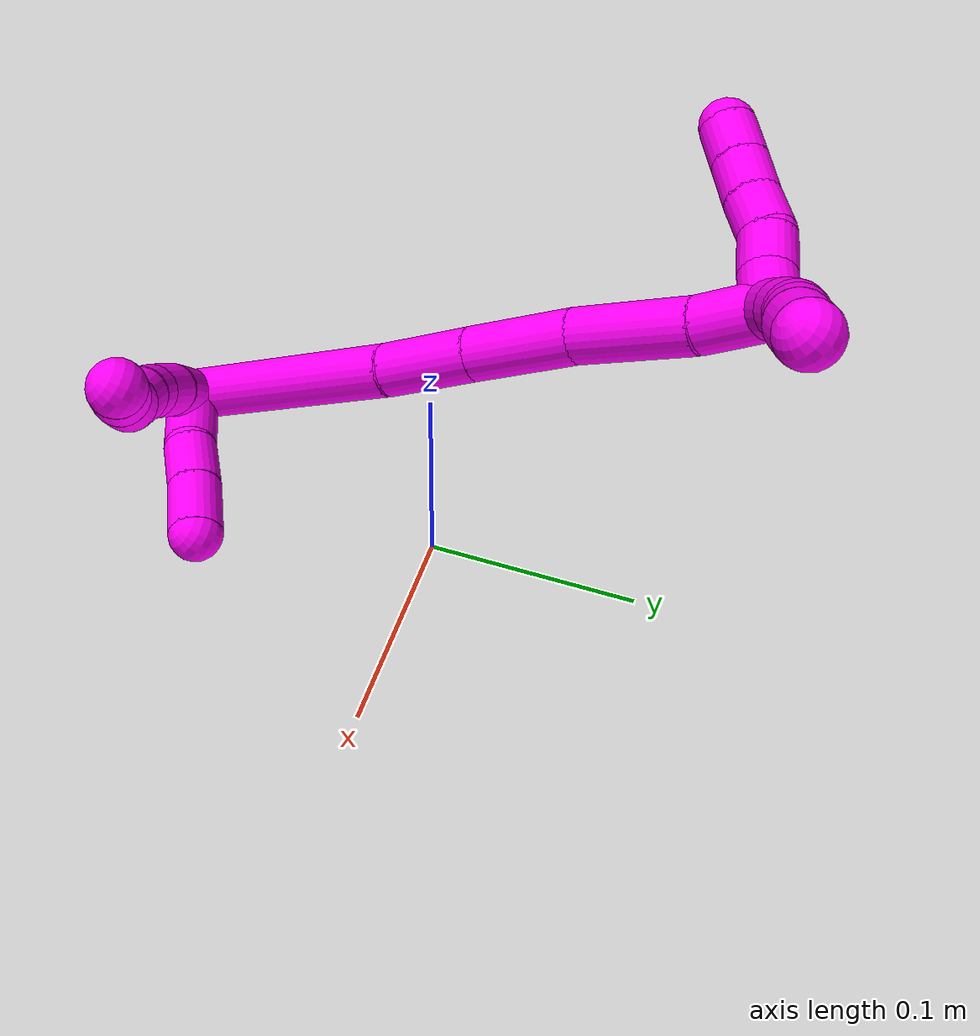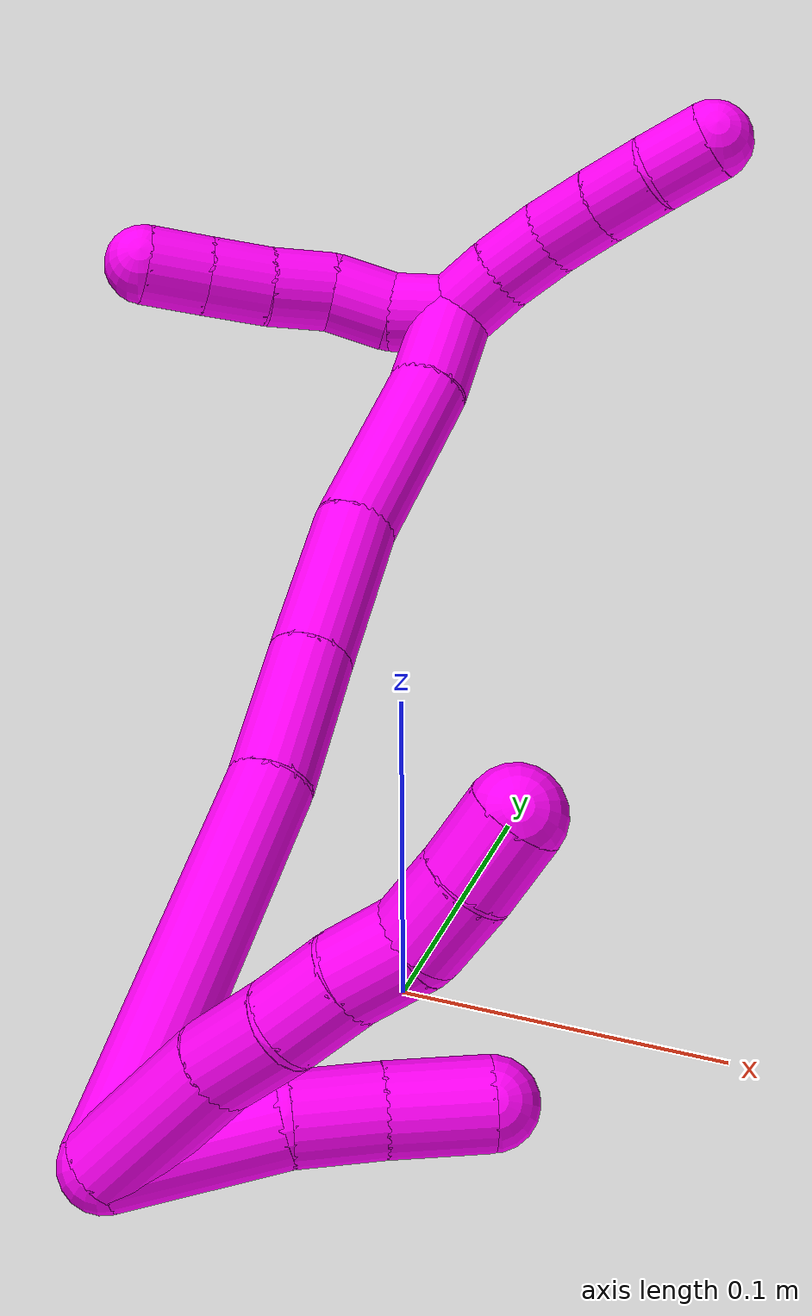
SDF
<sdf version="1.7">
 <world name="default">
  <model name="10">
   <static>0</static>
   <link name="10">
    <collision name="collision-cylinder-e_1_2_8">
     <pose>0.009029 0.016392 0.01272 -0.910855 0.410442 -0.203189</pose>
     <geometry><cylinder><radius>0.0125</radius><length>0.045255</length></cylinder></geometry>
     <surface>
      <friction><ode><mu>1.16</mu><mu2>1.16</mu2><slip1>0</slip1><slip2>0</slip2></ode></friction>
      <contact><ode><kp>1e+06</kp><kd>1</kd><max_vel>0</max_vel><min_depth>0.001</min_depth></ode></contact>
     </surface>
    </collision>
    <visual name="visual-cylinder-e_1_2_8">
     <pose>0.009029 0.016392 0.01272 -0.910855 0.410442 -0.203189</pose>
     <geometry><cylinder><radius>0.0125</radius><length>0.045255</length></cylinder></geometry>
     <material><ambient>1 0 0.964706 1</ambient></material>
    </visual>
    <collision name="collision-cylinder-e_2_8_9">
     <pose>0.024087 0.040115 0.032745 -0.787255 0.527505 -0.223366</pose>
     <geometry><cylinder><radius>0.0125</radius><length>0.023955</length></cylinder></geometry>
     <surface>
      <friction><ode><mu>1.16</mu><mu2>1.16</mu2><slip1>0</slip1><slip2>0</slip2></ode></friction>
      <contact><ode><kp>1e+06</kp><kd>1</kd><max_vel>0</max_vel><min_depth>0.001</min_depth></ode></contact>
     </surface>
    </collision>
    <visual name="visual-cylinder-e_2_8_9">
     <pose>0.024087 0.040115 0.032745 -0.787255 0.527505 -0.223366</pose>
     <geometry><cylinder><radius>0.0125</radius><length>0.023955</length></cylinder></geometry>
     <material><ambient>1 0 0.964706 1</ambient></material>
    </visual>
    <collision name="collision-cylinder-e_3_9_10">
     <pose>0.035157 0.054942 0.045041 -0.983272 0.510263 -0.277533</pose>
     <geometry><cylinder><radius>0.0125</radius><length>0.02064</length></cylinder></geometry>
     <surface>
      <friction><ode><mu>1.16</mu><mu2>1.16</mu2><slip1>0</slip1><slip2>0</slip2></ode></friction>
      <contact><ode><kp>1e+06</kp><kd>1</kd><max_vel>0</max_vel><min_depth>0.001</min_depth></ode></contact>
     </surface>
    </collision>
    <visual name="visual-cylinder-e_3_9_10">
     <pose>0.035157 0.054942 0.045041 -0.983272 0.510263 -0.277533</pose>
     <geometry><cylinder><radius>0.0125</radius><length>0.02064</length></cylinder></geometry>
     <material><ambient>1 0 0.964706 1</ambient></material>
    </visual>
    <collision name="collision-cylinder-e_4_10_11">
     <pose>0.046162 0.069209 0.054425 -0.995437 0.636454 -0.354229</pose>
     <geometry><cylinder><radius>0.0125</radius><length>0.020071</length></cylinder></geometry>
     <surface>
      <friction><ode><mu>1.16</mu><mu2>1.16</mu2><slip1>0</slip1><slip2>0</slip2></ode></friction>
      <contact><ode><kp>1e+06</kp><kd>1</kd><max_vel>0</max_vel><min_depth>0.001</min_depth></ode></contact>
     </surface>
    </collision>
    <visual name="visual-cylinder-e_4_10_11">
     <pose>0.046162 0.069209 0.054425 -0.995437 0.636454 -0.354229</pose>
     <geometry><cylinder><radius>0.0125</radius><length>0.020071</length></cylinder></geometry>
     <material><ambient>1 0 0.964706 1</ambient></material>
    </visual>
    <collision name="collision-cylinder-e_5_11_12">
     <pose>0.055055 0.084056 0.063943 -1.0052 0.297069 -0.164136</pose>
     <geometry><cylinder><radius>0.0125</radius><length>0.020007</length></cylinder></geometry>
     <surface>
      <friction><ode><mu>1.16</mu><mu2>1.16</mu2><slip1>0</slip1><slip2>0</slip2></ode></friction>
      <contact><ode><kp>1e+06</kp><kd>1</kd><max_vel>0</max_vel><min_depth>0.001</min_depth></ode></contact>
     </surface>
    </collision>
    <visual name="visual-cylinder-e_5_11_12">
     <pose>0.055055 0.084056 0.063943 -1.0052 0.297069 -0.164136</pose>
     <geometry><cylinder><radius>0.0125</radius><length>0.020007</length></cylinder></geometry>
     <material><ambient>1 0 0.964706 1</ambient></material>
    </visual>
    <collision name="collision-cylinder-e_6_12_6">
     <pose>0.060356 0.100721 0.073684 -1.0777 0.238767 -0.143188</pose>
     <geometry><cylinder><radius>0.0125</radius><length>0.02007</length></cylinder></geometry>
     <surface>
      <friction><ode><mu>1.16</mu><mu2>1.16</mu2><slip1>0</slip1><slip2>0</slip2></ode></friction>
      <contact><ode><kp>1e+06</kp><kd>1</kd><max_vel>0</max_vel><min_depth>0.001</min_depth></ode></contact>
     </surface>
    </collision>
    <visual name="visual-cylinder-e_6_12_6">
     <pose>0.060356 0.100721 0.073684 -1.0777 0.238767 -0.143188</pose>
     <geometry><cylinder><radius>0.0125</radius><length>0.02007</length></cylinder></geometry>
     <material><ambient>1 0 0.964706 1</ambient></material>
    </visual>
    <collision name="collision-cylinder-e_1_2_13">
     <pose>0.018958 0.01425 0.002159 -1.42042 0.920773 -0.806195</pose>
     <geometry><cylinder><radius>0.0125</radius><length>0.04763</length></cylinder></geometry>
     <surface>
      <friction><ode><mu>1.16</mu><mu2>1.16</mu2><slip1>0</slip1><slip2>0</slip2></ode></friction>
      <contact><ode><kp>1e+06</kp><kd>1</kd><max_vel>0</max_vel><min_depth>0.001</min_depth></ode></contact>
     </surface>
    </collision>
    <visual name="visual-cylinder-e_1_2_13">
     <pose>0.018958 0.01425 0.002159 -1.42042 0.920773 -0.806195</pose>
     <geometry><cylinder><radius>0.0125</radius><length>0.04763</length></cylinder></geometry>
     <material><ambient>1 0 0.964706 1</ambient></material>
    </visual>
    <collision name="collision-cylinder-e_2_13_14">
     <pose>0.048442 0.034487 0.002672 -1.83921 1.03785 -1.28629</pose>
     <geometry><cylinder><radius>0.0125</radius><length>0.024439</length></cylinder></geometry>
     <surface>
      <friction><ode><mu>1.16</mu><mu2>1.16</mu2><slip1>0</slip1><slip2>0</slip2></ode></friction>
      <contact><ode><kp>1e+06</kp><kd>1</kd><max_vel>0</max_vel><min_depth>0.001</min_depth></ode></contact>
     </surface>
    </collision>
    <visual name="visual-cylinder-e_2_13_14">
     <pose>0.048442 0.034487 0.002672 -1.83921 1.03785 -1.28629</pose>
     <geometry><cylinder><radius>0.0125</radius><length>0.024439</length></cylinder></geometry>
     <material><ambient>1 0 0.964706 1</ambient></material>
    </visual>
    <collision name="collision-cylinder-e_3_14_5">
     <pose>0.071325 0.046878 -0.000106 -1.74562 1.08634 -1.24769</pose>
     <geometry><cylinder><radius>0.0125</radius><length>0.027931</length></cylinder></geometry>
     <surface>
      <friction><ode><mu>1.16</mu><mu2>1.16</mu2><slip1>0</slip1><slip2>0</slip2></ode></friction>
      <contact><ode><kp>1e+06</kp><kd>1</kd><max_vel>0</max_vel><min_depth>0.001</min_depth></ode></contact>
     </surface>
    </collision>
    <visual name="visual-cylinder-e_3_14_5">
     <pose>0.071325 0.046878 -0.000106 -1.74562 1.08634 -1.24769</pose>
     <geometry><cylinder><radius>0.0125</radius><length>0.027931</length></cylinder></geometry>
     <material><ambient>1 0 0.964706 1</ambient></material>
    </visual>
    <collision name="collision-cylinder-e_1_2_15">
     <pose>-0.00358 0.05606 -0.018977 -1.8972 -0.060424 0.084222</pose>
     <geometry><cylinder><radius>0.0125</radius><length>0.118585</length></cylinder></geometry>
     <surface>
      <friction><ode><mu>1.16</mu><mu2>1.16</mu2><slip1>0</slip1><slip2>0</slip2></ode></friction>
      <contact><ode><kp>1e+06</kp><kd>1</kd><max_vel>0</max_vel><min_depth>0.001</min_depth></ode></contact>
     </surface>
    </collision>
    <visual name="visual-cylinder-e_1_2_15">
     <pose>-0.00358 0.05606 -0.018977 -1.8972 -0.060424 0.084222</pose>
     <geometry><cylinder><radius>0.0125</radius><length>0.118585</length></cylinder></geometry>
     <material><ambient>1 0 0.964706 1</ambient></material>
    </visual>
    <collision name="collision-cylinder-e_2_15_16">
     <pose>-0.010471 0.132451 -0.045682 -1.93401 -0.151008 0.218485</pose>
     <geometry><cylinder><radius>0.0125</radius><length>0.044002</length></cylinder></geometry>
     <surface>
      <friction><ode><mu>1.16</mu><mu2>1.16</mu2><slip1>0</slip1><slip2>0</slip2></ode></friction>
      <contact><ode><kp>1e+06</kp><kd>1</kd><max_vel>0</max_vel><min_depth>0.001</min_depth></ode></contact>
     </surface>
    </collision>
    <visual name="visual-cylinder-e_2_15_16">
     <pose>-0.010471 0.132451 -0.045682 -1.93401 -0.151008 0.218485</pose>
     <geometry><cylinder><radius>0.0125</radius><length>0.044002</length></cylinder></geometry>
     <material><ambient>1 0 0.964706 1</ambient></material>
    </visual>
    <collision name="collision-cylinder-e_3_16_17">
     <pose>-0.017169 0.175845 -0.062172 -1.93391 -0.136491 0.197535</pose>
     <geometry><cylinder><radius>0.0125</radius><length>0.049805</length></cylinder></geometry>
     <surface>
      <friction><ode><mu>1.16</mu><mu2>1.16</mu2><slip1>0</slip1><slip2>0</slip2></ode></friction>
      <contact><ode><kp>1e+06</kp><kd>1</kd><max_vel>0</max_vel><min_depth>0.001</min_depth></ode></contact>
     </surface>
    </collision>
    <visual name="visual-cylinder-e_3_16_17">
     <pose>-0.017169 0.175845 -0.062172 -1.93391 -0.136491 0.197535</pose>
     <geometry><cylinder><radius>0.0125</radius><length>0.049805</length></cylinder></geometry>
     <material><ambient>1 0 0.964706 1</ambient></material>
    </visual>
    <collision name="collision-cylinder-e_4_17_18">
     <pose>-0.020379 0.225998 -0.079188 -1.86653 0.006287 -0.008487</pose>
     <geometry><cylinder><radius>0.0125</radius><length>0.056641</length></cylinder></geometry>
     <surface>
      <friction><ode><mu>1.16</mu><mu2>1.16</mu2><slip1>0</slip1><slip2>0</slip2></ode></friction>
      <contact><ode><kp>1e+06</kp><kd>1</kd><max_vel>0</max_vel><min_depth>0.001</min_depth></ode></contact>
     </surface>
    </collision>
    <visual name="visual-cylinder-e_4_17_18">
     <pose>-0.020379 0.225998 -0.079188 -1.86653 0.006287 -0.008487</pose>
     <geometry><cylinder><radius>0.0125</radius><length>0.056641</length></cylinder></geometry>
     <material><ambient>1 0 0.964706 1</ambient></material>
    </visual>
    <collision name="collision-cylinder-e_5_18_1">
     <pose>-0.02205 0.267912 -0.091511 -1.8387 -0.119664 0.156804</pose>
     <geometry><cylinder><radius>0.0125</radius><length>0.030966</length></cylinder></geometry>
     <surface>
      <friction><ode><mu>1.16</mu><mu2>1.16</mu2><slip1>0</slip1><slip2>0</slip2></ode></friction>
      <contact><ode><kp>1e+06</kp><kd>1</kd><max_vel>0</max_vel><min_depth>0.001</min_depth></ode></contact>
     </surface>
    </collision>
    <visual name="visual-cylinder-e_5_18_1">
     <pose>-0.02205 0.267912 -0.091511 -1.8387 -0.119664 0.156804</pose>
     <geometry><cylinder><radius>0.0125</radius><length>0.030966</length></cylinder></geometry>
     <material><ambient>1 0 0.964706 1</ambient></material>
    </visual>
    <collision name="collision-cylinder-e_1_1_19">
     <pose>-0.019245 0.290429 -0.091201 -1.05329 0.483925 -0.28504</pose>
     <geometry><cylinder><radius>0.0125</radius><length>0.02</length></cylinder></geometry>
     <surface>
      <friction><ode><mu>1.16</mu><mu2>1.16</mu2><slip1>0</slip1><slip2>0</slip2></ode></friction>
      <contact><ode><kp>1e+06</kp><kd>1</kd><max_vel>0</max_vel><min_depth>0.001</min_depth></ode></contact>
     </surface>
    </collision>
    <visual name="visual-cylinder-e_1_1_19">
     <pose>-0.019245 0.290429 -0.091201 -1.05329 0.483925 -0.28504</pose>
     <geometry><cylinder><radius>0.0125</radius><length>0.02</length></cylinder></geometry>
     <material><ambient>1 0 0.964706 1</ambient></material>
    </visual>
    <collision name="collision-cylinder-e_2_19_20">
     <pose>-0.009208 0.305 -0.081954 -0.954913 0.568615 -0.30011</pose>
     <geometry><cylinder><radius>0.0125</radius><length>0.02</length></cylinder></geometry>
     <surface>
      <friction><ode><mu>1.16</mu><mu2>1.16</mu2><slip1>0</slip1><slip2>0</slip2></ode></friction>
      <contact><ode><kp>1e+06</kp><kd>1</kd><max_vel>0</max_vel><min_depth>0.001</min_depth></ode></contact>
     </surface>
    </collision>
    <visual name="visual-cylinder-e_2_19_20">
     <pose>-0.009208 0.305 -0.081954 -0.954913 0.568615 -0.30011</pose>
     <geometry><cylinder><radius>0.0125</radius><length>0.02</length></cylinder></geometry>
     <material><ambient>1 0 0.964706 1</ambient></material>
    </visual>
    <collision name="collision-cylinder-e_3_20_21">
     <pose>0.002039 0.317596 -0.071348 -0.783533 0.626468 -0.266038</pose>
     <geometry><cylinder><radius>0.0125</radius><length>0.02</length></cylinder></geometry>
     <surface>
      <friction><ode><mu>1.16</mu><mu2>1.16</mu2><slip1>0</slip1><slip2>0</slip2></ode></friction>
      <contact><ode><kp>1e+06</kp><kd>1</kd><max_vel>0</max_vel><min_depth>0.001</min_depth></ode></contact>
     </surface>
    </collision>
    <visual name="visual-cylinder-e_3_20_21">
     <pose>0.002039 0.317596 -0.071348 -0.783533 0.626468 -0.266038</pose>
     <geometry><cylinder><radius>0.0125</radius><length>0.02</length></cylinder></geometry>
     <material><ambient>1 0 0.964706 1</ambient></material>
    </visual>
    <collision name="collision-cylinder-e_4_21_22">
     <pose>0.013953 0.328834 -0.059872 -0.766243 0.649853 -0.269888</pose>
     <geometry><cylinder><radius>0.0125</radius><length>0.02</length></cylinder></geometry>
     <surface>
      <friction><ode><mu>1.16</mu><mu2>1.16</mu2><slip1>0</slip1><slip2>0</slip2></ode></friction>
      <contact><ode><kp>1e+06</kp><kd>1</kd><max_vel>0</max_vel><min_depth>0.001</min_depth></ode></contact>
     </surface>
    </collision>
    <visual name="visual-cylinder-e_4_21_22">
     <pose>0.013953 0.328834 -0.059872 -0.766243 0.649853 -0.269888</pose>
     <geometry><cylinder><radius>0.0125</radius><length>0.02</length></cylinder></geometry>
     <material><ambient>1 0 0.964706 1</ambient></material>
    </visual>
    <collision name="collision-cylinder-e_5_22_4">
     <pose>0.02634 0.340694 -0.0497 -0.96028 0.686219 -0.367886</pose>
     <geometry><cylinder><radius>0.0125</radius><length>0.02</length></cylinder></geometry>
     <surface>
      <friction><ode><mu>1.16</mu><mu2>1.16</mu2><slip1>0</slip1><slip2>0</slip2></ode></friction>
      <contact><ode><kp>1e+06</kp><kd>1</kd><max_vel>0</max_vel><min_depth>0.001</min_depth></ode></contact>
     </surface>
    </collision>
    <visual name="visual-cylinder-e_5_22_4">
     <pose>0.02634 0.340694 -0.0497 -0.96028 0.686219 -0.367886</pose>
     <geometry><cylinder><radius>0.0125</radius><length>0.02</length></cylinder></geometry>
     <material><ambient>1 0 0.964706 1</ambient></material>
    </visual>
    <collision name="collision-cylinder-e_1_1_23">
     <pose>-0.033317 0.27951 -0.096516 1.85301 -1.22822 -1.50739</pose>
     <geometry><cylinder><radius>0.0125</radius><length>0.02</length></cylinder></geometry>
     <surface>
      <friction><ode><mu>1.16</mu><mu2>1.16</mu2><slip1>0</slip1><slip2>0</slip2></ode></friction>
      <contact><ode><kp>1e+06</kp><kd>1</kd><max_vel>0</max_vel><min_depth>0.001</min_depth></ode></contact>
     </surface>
    </collision>
    <visual name="visual-cylinder-e_1_1_23">
     <pose>-0.033317 0.27951 -0.096516 1.85301 -1.22822 -1.50739</pose>
     <geometry><cylinder><radius>0.0125</radius><length>0.02</length></cylinder></geometry>
     <material><ambient>1 0 0.964706 1</ambient></material>
    </visual>
    <collision name="collision-cylinder-e_2_23_24">
     <pose>-0.052628 0.275198 -0.096466 0.833846 -1.42364 -0.729921</pose>
     <geometry><cylinder><radius>0.0125</radius><length>0.02</length></cylinder></geometry>
     <surface>
      <friction><ode><mu>1.16</mu><mu2>1.16</mu2><slip1>0</slip1><slip2>0</slip2></ode></friction>
      <contact><ode><kp>1e+06</kp><kd>1</kd><max_vel>0</max_vel><min_depth>0.001</min_depth></ode></contact>
     </surface>
    </collision>
    <visual name="visual-cylinder-e_2_23_24">
     <pose>-0.052628 0.275198 -0.096466 0.833846 -1.42364 -0.729921</pose>
     <geometry><cylinder><radius>0.0125</radius><length>0.02</length></cylinder></geometry>
     <material><ambient>1 0 0.964706 1</ambient></material>
    </visual>
    <collision name="collision-cylinder-e_3_24_25">
     <pose>-0.071481 0.270209 -0.093369 1.07499 -1.11095 -0.708648</pose>
     <geometry><cylinder><radius>0.0125</radius><length>0.02</length></cylinder></geometry>
     <surface>
      <friction><ode><mu>1.16</mu><mu2>1.16</mu2><slip1>0</slip1><slip2>0</slip2></ode></friction>
      <contact><ode><kp>1e+06</kp><kd>1</kd><max_vel>0</max_vel><min_depth>0.001</min_depth></ode></contact>
     </surface>
    </collision>
    <visual name="visual-cylinder-e_3_24_25">
     <pose>-0.071481 0.270209 -0.093369 1.07499 -1.11095 -0.708648</pose>
     <geometry><cylinder><radius>0.0125</radius><length>0.02</length></cylinder></geometry>
     <material><ambient>1 0 0.964706 1</ambient></material>
    </visual>
    <collision name="collision-cylinder-e_4_25_26">
     <pose>-0.08963 0.263168 -0.088862 0.918693 -1.16507 -0.630026</pose>
     <geometry><cylinder><radius>0.0125</radius><length>0.02</length></cylinder></geometry>
     <surface>
      <friction><ode><mu>1.16</mu><mu2>1.16</mu2><slip1>0</slip1><slip2>0</slip2></ode></friction>
      <contact><ode><kp>1e+06</kp><kd>1</kd><max_vel>0</max_vel><min_depth>0.001</min_depth></ode></contact>
     </surface>
    </collision>
    <visual name="visual-cylinder-e_4_25_26">
     <pose>-0.08963 0.263168 -0.088862 0.918693 -1.16507 -0.630026</pose>
     <geometry><cylinder><radius>0.0125</radius><length>0.02</length></cylinder></geometry>
     <material><ambient>1 0 0.964706 1</ambient></material>
    </visual>
    <collision name="collision-cylinder-e_5_26_3">
     <pose>-0.107945 0.256921 -0.083816 0.864901 -1.14976 -0.581176</pose>
     <geometry><cylinder><radius>0.0125</radius><length>0.02</length></cylinder></geometry>
     <surface>
      <friction><ode><mu>1.16</mu><mu2>1.16</mu2><slip1>0</slip1><slip2>0</slip2></ode></friction>
      <contact><ode><kp>1e+06</kp><kd>1</kd><max_vel>0</max_vel><min_depth>0.001</min_depth></ode></contact>
     </surface>
    </collision>
    <visual name="visual-cylinder-e_5_26_3">
     <pose>-0.107945 0.256921 -0.083816 0.864901 -1.14976 -0.581176</pose>
     <geometry><cylinder><radius>0.0125</radius><length>0.02</length></cylinder></geometry>
     <material><ambient>1 0 0.964706 1</ambient></material>
    </visual>
    <collision name="collision-sphere-3">
     <pose>-0.117072 0.25381 -0.081165 0 -0 0</pose>
     <geometry><sphere><radius>0.0125</radius></sphere></geometry>
     <surface>
      <friction><ode><mu>1.16</mu><mu2>1.16</mu2><slip1>0</slip1><slip2>0</slip2></ode></friction>
      <contact><ode><kp>1e+06</kp><kd>1</kd><max_vel>0</max_vel><min_depth>0.001</min_depth></ode></contact>
     </surface>
    </collision>
    <visual name="visual-sphere-3">
     <pose>-0.117072 0.25381 -0.081165 0 -0 0</pose>
     <geometry><sphere><radius>0.0125</radius></sphere></geometry>
     <material><ambient>1 0 0.964706 1</ambient></material>
    </visual>
    <collision name="collision-sphere-26">
     <pose>-0.098818 0.260031 -0.086467 0 -0 0</pose>
     <geometry><sphere><radius>0.0125</radius></sphere></geometry>
     <surface>
      <friction><ode><mu>1.16</mu><mu2>1.16</mu2><slip1>0</slip1><slip2>0</slip2></ode></friction>
      <contact><ode><kp>1e+06</kp><kd>1</kd><max_vel>0</max_vel><min_depth>0.001</min_depth></ode></contact>
     </surface>
    </collision>
    <visual name="visual-sphere-26">
     <pose>-0.098818 0.260031 -0.086467 0 -0 0</pose>
     <geometry><sphere><radius>0.0125</radius></sphere></geometry>
     <material><ambient>1 0 0.964706 1</ambient></material>
    </visual>
    <collision name="collision-sphere-25">
     <pose>-0.080442 0.266305 -0.091258 0 -0 0</pose>
     <geometry><sphere><radius>0.0125</radius></sphere></geometry>
     <surface>
      <friction><ode><mu>1.16</mu><mu2>1.16</mu2><slip1>0</slip1><slip2>0</slip2></ode></friction>
      <contact><ode><kp>1e+06</kp><kd>1</kd><max_vel>0</max_vel><min_depth>0.001</min_depth></ode></contact>
     </surface>
    </collision>
    <visual name="visual-sphere-25">
     <pose>-0.080442 0.266305 -0.091258 0 -0 0</pose>
     <geometry><sphere><radius>0.0125</radius></sphere></geometry>
     <material><ambient>1 0 0.964706 1</ambient></material>
    </visual>
    <collision name="collision-sphere-24">
     <pose>-0.06252 0.274112 -0.09548 0 -0 0</pose>
     <geometry><sphere><radius>0.0125</radius></sphere></geometry>
     <surface>
      <friction><ode><mu>1.16</mu><mu2>1.16</mu2><slip1>0</slip1><slip2>0</slip2></ode></friction>
      <contact><ode><kp>1e+06</kp><kd>1</kd><max_vel>0</max_vel><min_depth>0.001</min_depth></ode></contact>
     </surface>
    </collision>
    <visual name="visual-sphere-24">
     <pose>-0.06252 0.274112 -0.09548 0 -0 0</pose>
     <geometry><sphere><radius>0.0125</radius></sphere></geometry>
     <material><ambient>1 0 0.964706 1</ambient></material>
    </visual>
    <collision name="collision-sphere-23">
     <pose>-0.042736 0.276284 -0.097451 0 -0 0</pose>
     <geometry><sphere><radius>0.0125</radius></sphere></geometry>
     <surface>
      <friction><ode><mu>1.16</mu><mu2>1.16</mu2><slip1>0</slip1><slip2>0</slip2></ode></friction>
      <contact><ode><kp>1e+06</kp><kd>1</kd><max_vel>0</max_vel><min_depth>0.001</min_depth></ode></contact>
     </surface>
    </collision>
    <visual name="visual-sphere-23">
     <pose>-0.042736 0.276284 -0.097451 0 -0 0</pose>
     <geometry><sphere><radius>0.0125</radius></sphere></geometry>
     <material><ambient>1 0 0.964706 1</ambient></material>
    </visual>
    <collision name="collision-sphere-4">
     <pose>0.032676 0.347033 -0.045265 0 -0 0</pose>
     <geometry><sphere><radius>0.0125</radius></sphere></geometry>
     <surface>
      <friction><ode><mu>1.16</mu><mu2>1.16</mu2><slip1>0</slip1><slip2>0</slip2></ode></friction>
      <contact><ode><kp>1e+06</kp><kd>1</kd><max_vel>0</max_vel><min_depth>0.001</min_depth></ode></contact>
     </surface>
    </collision>
    <visual name="visual-sphere-4">
     <pose>0.032676 0.347033 -0.045265 0 -0 0</pose>
     <geometry><sphere><radius>0.0125</radius></sphere></geometry>
     <material><ambient>1 0 0.964706 1</ambient></material>
    </visual>
    <collision name="collision-sphere-22">
     <pose>0.020004 0.334355 -0.054135 0 -0 0</pose>
     <geometry><sphere><radius>0.0125</radius></sphere></geometry>
     <surface>
      <friction><ode><mu>1.16</mu><mu2>1.16</mu2><slip1>0</slip1><slip2>0</slip2></ode></friction>
      <contact><ode><kp>1e+06</kp><kd>1</kd><max_vel>0</max_vel><min_depth>0.001</min_depth></ode></contact>
     </surface>
    </collision>
    <visual name="visual-sphere-22">
     <pose>0.020004 0.334355 -0.054135 0 -0 0</pose>
     <geometry><sphere><radius>0.0125</radius></sphere></geometry>
     <material><ambient>1 0 0.964706 1</ambient></material>
    </visual>
    <collision name="collision-sphere-21">
     <pose>0.007902 0.323313 -0.065609 0 -0 0</pose>
     <geometry><sphere><radius>0.0125</radius></sphere></geometry>
     <surface>
      <friction><ode><mu>1.16</mu><mu2>1.16</mu2><slip1>0</slip1><slip2>0</slip2></ode></friction>
      <contact><ode><kp>1e+06</kp><kd>1</kd><max_vel>0</max_vel><min_depth>0.001</min_depth></ode></contact>
     </surface>
    </collision>
    <visual name="visual-sphere-21">
     <pose>0.007902 0.323313 -0.065609 0 -0 0</pose>
     <geometry><sphere><radius>0.0125</radius></sphere></geometry>
     <material><ambient>1 0 0.964706 1</ambient></material>
    </visual>
    <collision name="collision-sphere-20">
     <pose>-0.003823 0.311878 -0.077086 0 -0 0</pose>
     <geometry><sphere><radius>0.0125</radius></sphere></geometry>
     <surface>
      <friction><ode><mu>1.16</mu><mu2>1.16</mu2><slip1>0</slip1><slip2>0</slip2></ode></friction>
      <contact><ode><kp>1e+06</kp><kd>1</kd><max_vel>0</max_vel><min_depth>0.001</min_depth></ode></contact>
     </surface>
    </collision>
    <visual name="visual-sphere-20">
     <pose>-0.003823 0.311878 -0.077086 0 -0 0</pose>
     <geometry><sphere><radius>0.0125</radius></sphere></geometry>
     <material><ambient>1 0 0.964706 1</ambient></material>
    </visual>
    <collision name="collision-sphere-12">
     <pose>0.057983 0.092132 0.069069 0 -0 0</pose>
     <geometry><sphere><radius>0.0125</radius></sphere></geometry>
     <surface>
      <friction><ode><mu>1.16</mu><mu2>1.16</mu2><slip1>0</slip1><slip2>0</slip2></ode></friction>
      <contact><ode><kp>1e+06</kp><kd>1</kd><max_vel>0</max_vel><min_depth>0.001</min_depth></ode></contact>
     </surface>
    </collision>
    <visual name="visual-sphere-12">
     <pose>0.057983 0.092132 0.069069 0 -0 0</pose>
     <geometry><sphere><radius>0.0125</radius></sphere></geometry>
     <material><ambient>1 0 0.964706 1</ambient></material>
    </visual>
    <collision name="collision-sphere-11">
     <pose>0.052126 0.075981 0.058816 0 -0 0</pose>
     <geometry><sphere><radius>0.0125</radius></sphere></geometry>
     <surface>
      <friction><ode><mu>1.16</mu><mu2>1.16</mu2><slip1>0</slip1><slip2>0</slip2></ode></friction>
      <contact><ode><kp>1e+06</kp><kd>1</kd><max_vel>0</max_vel><min_depth>0.001</min_depth></ode></contact>
     </surface>
    </collision>
    <visual name="visual-sphere-11">
     <pose>0.052126 0.075981 0.058816 0 -0 0</pose>
     <geometry><sphere><radius>0.0125</radius></sphere></geometry>
     <material><ambient>1 0 0.964706 1</ambient></material>
    </visual>
    <collision name="collision-sphere-10">
     <pose>0.040197 0.062438 0.050033 0 -0 0</pose>
     <geometry><sphere><radius>0.0125</radius></sphere></geometry>
     <surface>
      <friction><ode><mu>1.16</mu><mu2>1.16</mu2><slip1>0</slip1><slip2>0</slip2></ode></friction>
      <contact><ode><kp>1e+06</kp><kd>1</kd><max_vel>0</max_vel><min_depth>0.001</min_depth></ode></contact>
     </surface>
    </collision>
    <visual name="visual-sphere-10">
     <pose>0.040197 0.062438 0.050033 0 -0 0</pose>
     <geometry><sphere><radius>0.0125</radius></sphere></geometry>
     <material><ambient>1 0 0.964706 1</ambient></material>
    </visual>
    <collision name="collision-sphere-9">
     <pose>0.030116 0.047447 0.04005 0 -0 0</pose>
     <geometry><sphere><radius>0.0125</radius></sphere></geometry>
     <surface>
      <friction><ode><mu>1.16</mu><mu2>1.16</mu2><slip1>0</slip1><slip2>0</slip2></ode></friction>
      <contact><ode><kp>1e+06</kp><kd>1</kd><max_vel>0</max_vel><min_depth>0.001</min_depth></ode></contact>
     </surface>
    </collision>
    <visual name="visual-sphere-9">
     <pose>0.030116 0.047447 0.04005 0 -0 0</pose>
     <geometry><sphere><radius>0.0125</radius></sphere></geometry>
     <material><ambient>1 0 0.964706 1</ambient></material>
    </visual>
    <collision name="collision-sphere-2">
     <geometry><sphere><radius>0.0125</radius></sphere></geometry>
     <surface>
      <friction><ode><mu>1.16</mu><mu2>1.16</mu2><slip1>0</slip1><slip2>0</slip2></ode></friction>
      <contact><ode><kp>1e+06</kp><kd>1</kd><max_vel>0</max_vel><min_depth>0.001</min_depth></ode></contact>
     </surface>
    </collision>
    <visual name="visual-sphere-2">
     <geometry><sphere><radius>0.0125</radius></sphere></geometry>
     <material><ambient>1 0 0.964706 1</ambient></material>
    </visual>
    <collision name="collision-sphere-19">
     <pose>-0.014593 0.298122 -0.086822 0 -0 0</pose>
     <geometry><sphere><radius>0.0125</radius></sphere></geometry>
     <surface>
      <friction><ode><mu>1.16</mu><mu2>1.16</mu2><slip1>0</slip1><slip2>0</slip2></ode></friction>
      <contact><ode><kp>1e+06</kp><kd>1</kd><max_vel>0</max_vel><min_depth>0.001</min_depth></ode></contact>
     </surface>
    </collision>
    <visual name="visual-sphere-19">
     <pose>-0.014593 0.298122 -0.086822 0 -0 0</pose>
     <geometry><sphere><radius>0.0125</radius></sphere></geometry>
     <material><ambient>1 0 0.964706 1</ambient></material>
    </visual>
    <collision name="collision-sphere-8">
     <pose>0.018058 0.032784 0.02544 0 -0 0</pose>
     <geometry><sphere><radius>0.0125</radius></sphere></geometry>
     <surface>
      <friction><ode><mu>1.16</mu><mu2>1.16</mu2><slip1>0</slip1><slip2>0</slip2></ode></friction>
      <contact><ode><kp>1e+06</kp><kd>1</kd><max_vel>0</max_vel><min_depth>0.001</min_depth></ode></contact>
     </surface>
    </collision>
    <visual name="visual-sphere-8">
     <pose>0.018058 0.032784 0.02544 0 -0 0</pose>
     <geometry><sphere><radius>0.0125</radius></sphere></geometry>
     <material><ambient>1 0 0.964706 1</ambient></material>
    </visual>
    <collision name="collision-sphere-6">
     <pose>0.06273 0.10931 0.0783 0 -0 0</pose>
     <geometry><sphere><radius>0.0125</radius></sphere></geometry>
     <surface>
      <friction><ode><mu>1.16</mu><mu2>1.16</mu2><slip1>0</slip1><slip2>0</slip2></ode></friction>
      <contact><ode><kp>1e+06</kp><kd>1</kd><max_vel>0</max_vel><min_depth>0.001</min_depth></ode></contact>
     </surface>
    </collision>
    <visual name="visual-sphere-6">
     <pose>0.06273 0.10931 0.0783 0 -0 0</pose>
     <geometry><sphere><radius>0.0125</radius></sphere></geometry>
     <material><ambient>1 0 0.964706 1</ambient></material>
    </visual>
    <collision name="collision-sphere-13">
     <pose>0.037917 0.028501 0.004318 0 -0 0</pose>
     <geometry><sphere><radius>0.0125</radius></sphere></geometry>
     <surface>
      <friction><ode><mu>1.16</mu><mu2>1.16</mu2><slip1>0</slip1><slip2>0</slip2></ode></friction>
      <contact><ode><kp>1e+06</kp><kd>1</kd><max_vel>0</max_vel><min_depth>0.001</min_depth></ode></contact>
     </surface>
    </collision>
    <visual name="visual-sphere-13">
     <pose>0.037917 0.028501 0.004318 0 -0 0</pose>
     <geometry><sphere><radius>0.0125</radius></sphere></geometry>
     <material><ambient>1 0 0.964706 1</ambient></material>
    </visual>
    <collision name="collision-sphere-14">
     <pose>0.058967 0.040473 0.001025 0 -0 0</pose>
     <geometry><sphere><radius>0.0125</radius></sphere></geometry>
     <surface>
      <friction><ode><mu>1.16</mu><mu2>1.16</mu2><slip1>0</slip1><slip2>0</slip2></ode></friction>
      <contact><ode><kp>1e+06</kp><kd>1</kd><max_vel>0</max_vel><min_depth>0.001</min_depth></ode></contact>
     </surface>
    </collision>
    <visual name="visual-sphere-14">
     <pose>0.058967 0.040473 0.001025 0 -0 0</pose>
     <geometry><sphere><radius>0.0125</radius></sphere></geometry>
     <material><ambient>1 0 0.964706 1</ambient></material>
    </visual>
    <collision name="collision-sphere-5">
     <pose>0.083683 0.053283 -0.001237 0 -0 0</pose>
     <geometry><sphere><radius>0.0125</radius></sphere></geometry>
     <surface>
      <friction><ode><mu>1.16</mu><mu2>1.16</mu2><slip1>0</slip1><slip2>0</slip2></ode></friction>
      <contact><ode><kp>1e+06</kp><kd>1</kd><max_vel>0</max_vel><min_depth>0.001</min_depth></ode></contact>
     </surface>
    </collision>
    <visual name="visual-sphere-5">
     <pose>0.083683 0.053283 -0.001237 0 -0 0</pose>
     <geometry><sphere><radius>0.0125</radius></sphere></geometry>
     <material><ambient>1 0 0.964706 1</ambient></material>
    </visual>
    <collision name="collision-sphere-15">
     <pose>-0.007161 0.112119 -0.037954 0 -0 0</pose>
     <geometry><sphere><radius>0.0125</radius></sphere></geometry>
     <surface>
      <friction><ode><mu>1.16</mu><mu2>1.16</mu2><slip1>0</slip1><slip2>0</slip2></ode></friction>
      <contact><ode><kp>1e+06</kp><kd>1</kd><max_vel>0</max_vel><min_depth>0.001</min_depth></ode></contact>
     </surface>
    </collision>
    <visual name="visual-sphere-15">
     <pose>-0.007161 0.112119 -0.037954 0 -0 0</pose>
     <geometry><sphere><radius>0.0125</radius></sphere></geometry>
     <material><ambient>1 0 0.964706 1</ambient></material>
    </visual>
    <collision name="collision-sphere-16">
     <pose>-0.01378 0.152783 -0.053409 0 -0 0</pose>
     <geometry><sphere><radius>0.0125</radius></sphere></geometry>
     <surface>
      <friction><ode><mu>1.16</mu><mu2>1.16</mu2><slip1>0</slip1><slip2>0</slip2></ode></friction>
      <contact><ode><kp>1e+06</kp><kd>1</kd><max_vel>0</max_vel><min_depth>0.001</min_depth></ode></contact>
     </surface>
    </collision>
    <visual name="visual-sphere-16">
     <pose>-0.01378 0.152783 -0.053409 0 -0 0</pose>
     <geometry><sphere><radius>0.0125</radius></sphere></geometry>
     <material><ambient>1 0 0.964706 1</ambient></material>
    </visual>
    <collision name="collision-sphere-17">
     <pose>-0.020557 0.198907 -0.070934 0 -0 0</pose>
     <geometry><sphere><radius>0.0125</radius></sphere></geometry>
     <surface>
      <friction><ode><mu>1.16</mu><mu2>1.16</mu2><slip1>0</slip1><slip2>0</slip2></ode></friction>
      <contact><ode><kp>1e+06</kp><kd>1</kd><max_vel>0</max_vel><min_depth>0.001</min_depth></ode></contact>
     </surface>
    </collision>
    <visual name="visual-sphere-17">
     <pose>-0.020557 0.198907 -0.070934 0 -0 0</pose>
     <geometry><sphere><radius>0.0125</radius></sphere></geometry>
     <material><ambient>1 0 0.964706 1</ambient></material>
    </visual>
    <collision name="collision-sphere-18">
     <pose>-0.020201 0.253088 -0.087442 0 -0 0</pose>
     <geometry><sphere><radius>0.0125</radius></sphere></geometry>
     <surface>
      <friction><ode><mu>1.16</mu><mu2>1.16</mu2><slip1>0</slip1><slip2>0</slip2></ode></friction>
      <contact><ode><kp>1e+06</kp><kd>1</kd><max_vel>0</max_vel><min_depth>0.001</min_depth></ode></contact>
     </surface>
    </collision>
    <visual name="visual-sphere-18">
     <pose>-0.020201 0.253088 -0.087442 0 -0 0</pose>
     <geometry><sphere><radius>0.0125</radius></sphere></geometry>
     <material><ambient>1 0 0.964706 1</ambient></material>
    </visual>
    <collision name="collision-sphere-1">
     <pose>-0.023898 0.282736 -0.09558 0 -0 0</pose>
     <geometry><sphere><radius>0.0125</radius></sphere></geometry>
     <surface>
      <friction><ode><mu>1.16</mu><mu2>1.16</mu2><slip1>0</slip1><slip2>0</slip2></ode></friction>
      <contact><ode><kp>1e+06</kp><kd>1</kd><max_vel>0</max_vel><min_depth>0.001</min_depth></ode></contact>
     </surface>
    </collision>
    <visual name="visual-sphere-1">
     <pose>-0.023898 0.282736 -0.09558 0 -0 0</pose>
     <geometry><sphere><radius>0.0125</radius></sphere></geometry>
     <material><ambient>1 0 0.964706 1</ambient></material>
    </visual>
    <inertial>
     <pose>-0.001827 0.148856 -0.032843 0 -0 0</pose>
     <mass>0.75</mass>
     <inertia>
      <ixx>0.000222</ixx>
      <ixy>0</ixy>
      <ixz>0</ixz>
      <iyy>1.7e-05</iyy>
      <iyz>0</iyz>
      <izz>-0.000202</izz>
     </inertia>
    </inertial>
   </link>
   <pose>-0.028918 -0.136946 0.032377 0.786996 0.306005 0.072859</pose>
  </model>
 </world>
</sdf>
